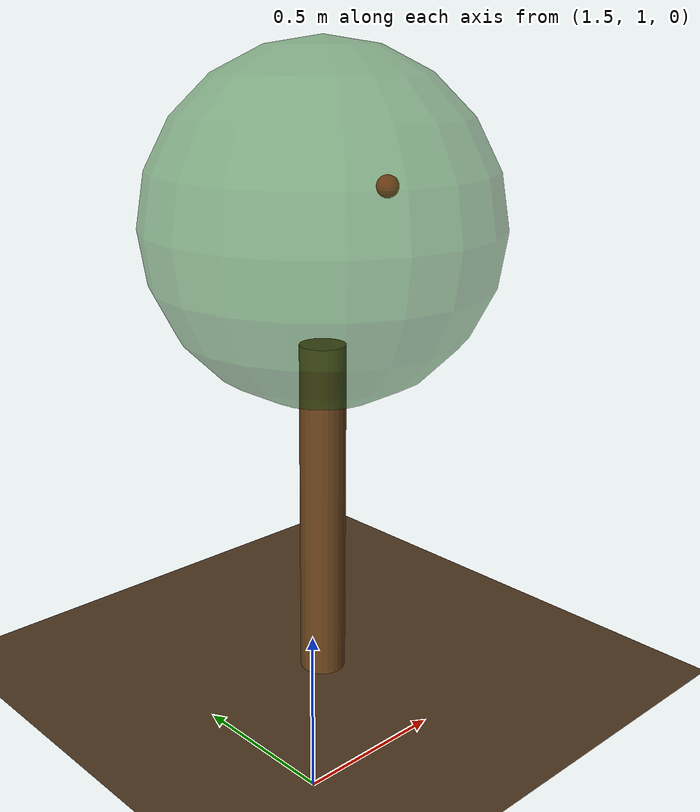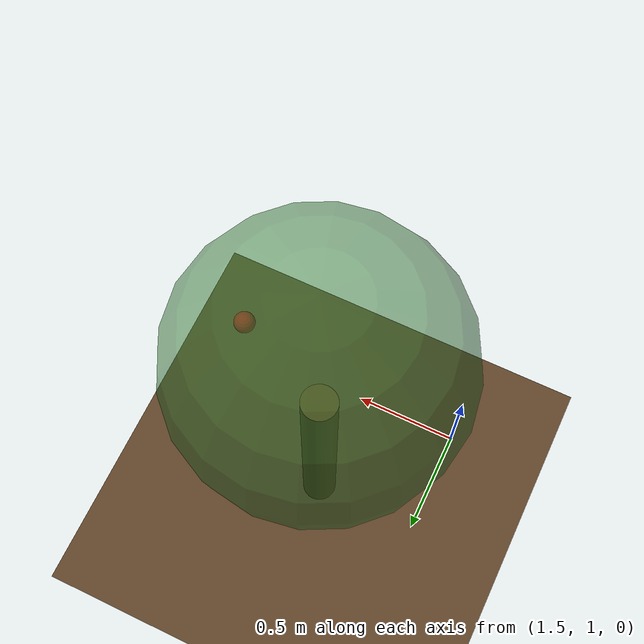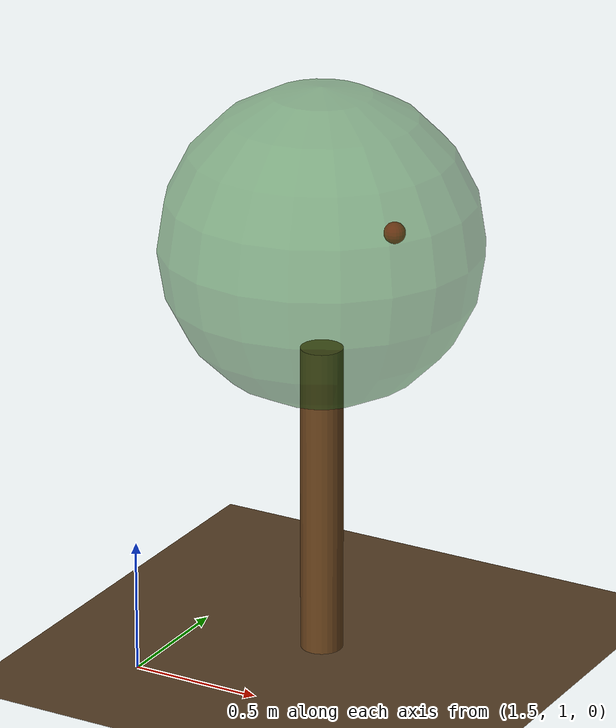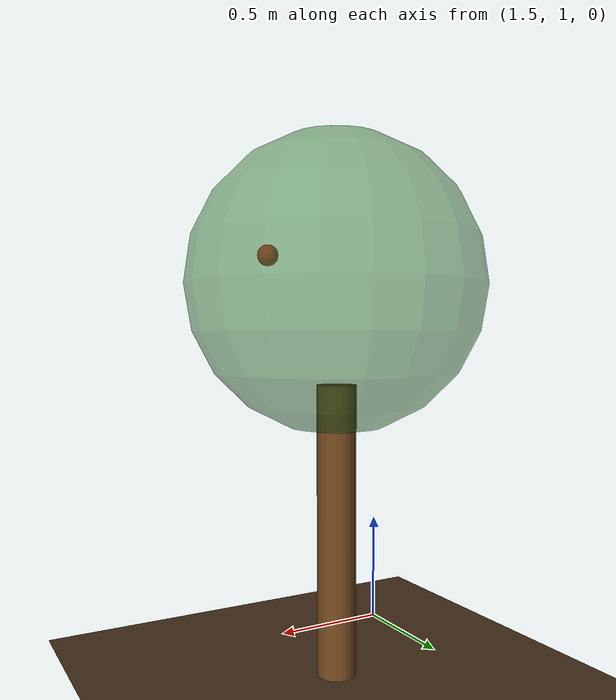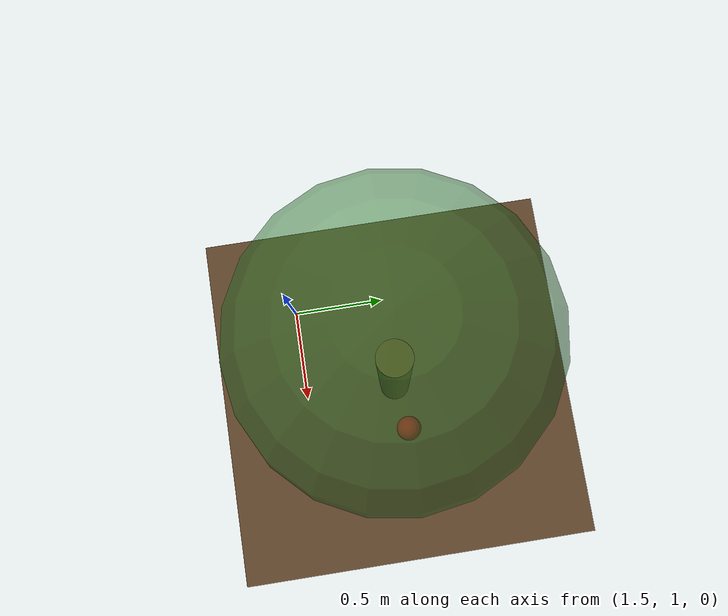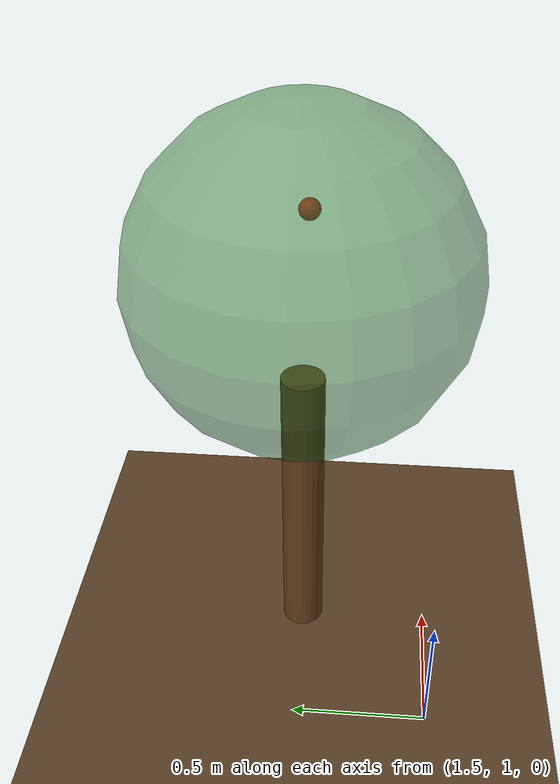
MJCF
<mujoco model="agribot_orchard_scene">
  <compiler angle="radian"/>
  <option timestep="0.001" gravity="0 0 -9.81"/>

  <default>
    <geom friction="0.9 0.9 0.005"/>
  </default>

  <worldbody>
    <light diffuse="0.8 0.8 0.8" pos="0 0 6" dir="0 0 -1"/>

    <!-- Zemin: friction RUNTIME'DA degistirilebilir (Gazebo'ya gore avantaj) -->
    <geom name="ground" type="plane" size="15 5 0.1" friction="0.9 0.9 0.005" rgba="0.35 0.25 0.15 1"/>

    <!-- Ornek bir agac + elma (dal-govde WELD kisiti = "kirilabilir eklem") -->
    <body name="tree_1" pos="2 1.5 0">
      <geom type="cylinder" size="0.08 0.6" pos="0 0 0.6" rgba="0.4 0.25 0.1 1"/>
      <body name="branch_1" pos="0 0 1.6">
        <geom type="sphere" size="0.6" rgba="0.15 0.45 0.15 0.5" contype="0" conaffinity="0"/>
      </body>
    </body>

    <body name="apple_1" pos="2.3 1.5 1.7">
      <freejoint/>
      <geom name="apple_1_geom" type="sphere" size="0.04" mass="0.15" rgba="0.7 0.05 0.05 1"/>
    </body>
  </worldbody>

  <equality>
    <!--
      "apple_1"i "branch_1"e sabitleyen weld kisiti. Kopma aninda
      mujoco_ros servisi bu ismi kullanarak eq_active=0 yapar.
    -->
    <weld name="apple_1_breakable_joint" body1="apple_1" body2="branch_1" active="true"/>
  </equality>

  <sensor>
    <!-- Kavrama kuvvetini izlemek icin (gercek projede end-effector gövdesine eklenir) -->
    <force name="gripper_force_sensor" site="gripper_site"/>
  </sensor>
</mujoco>
